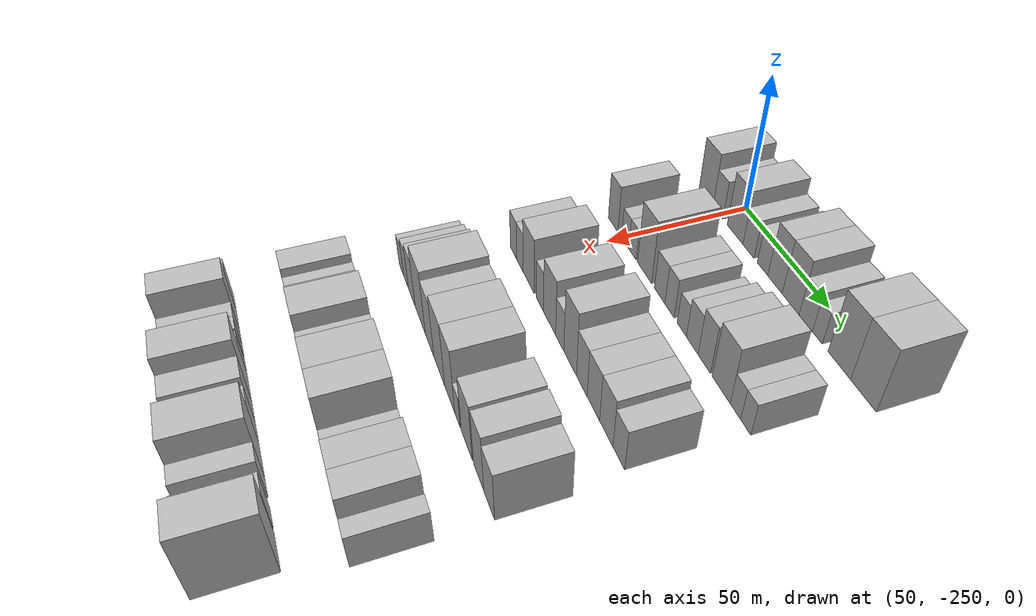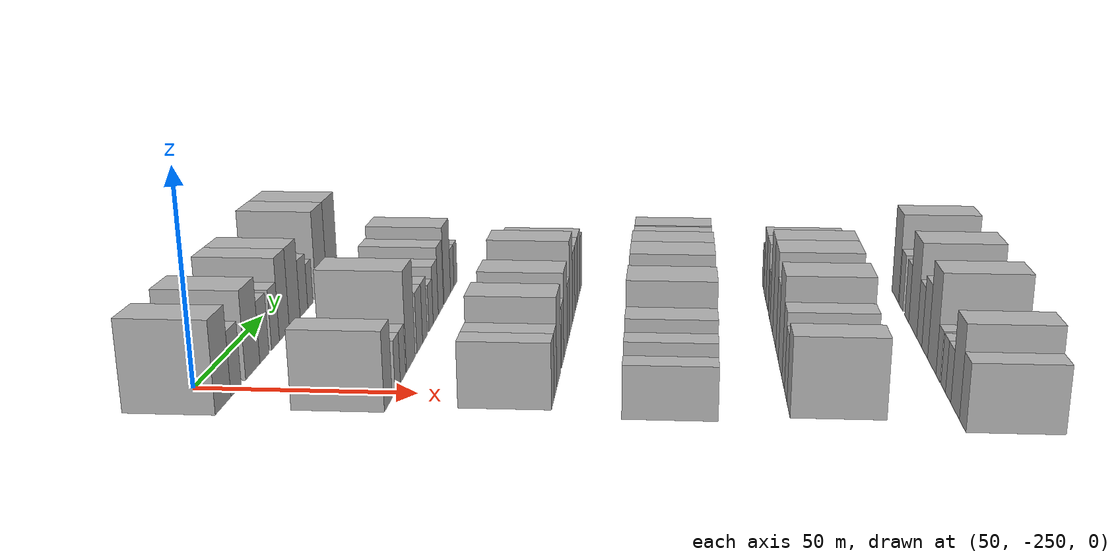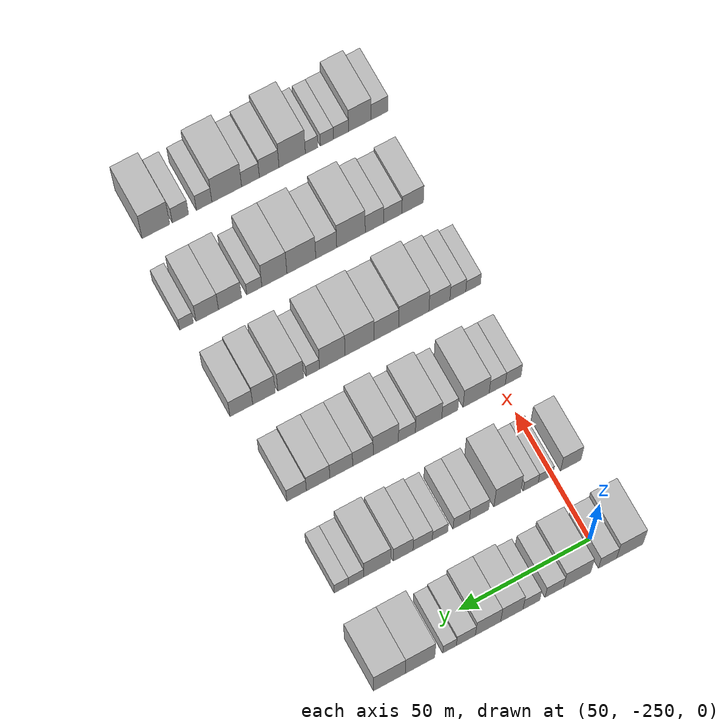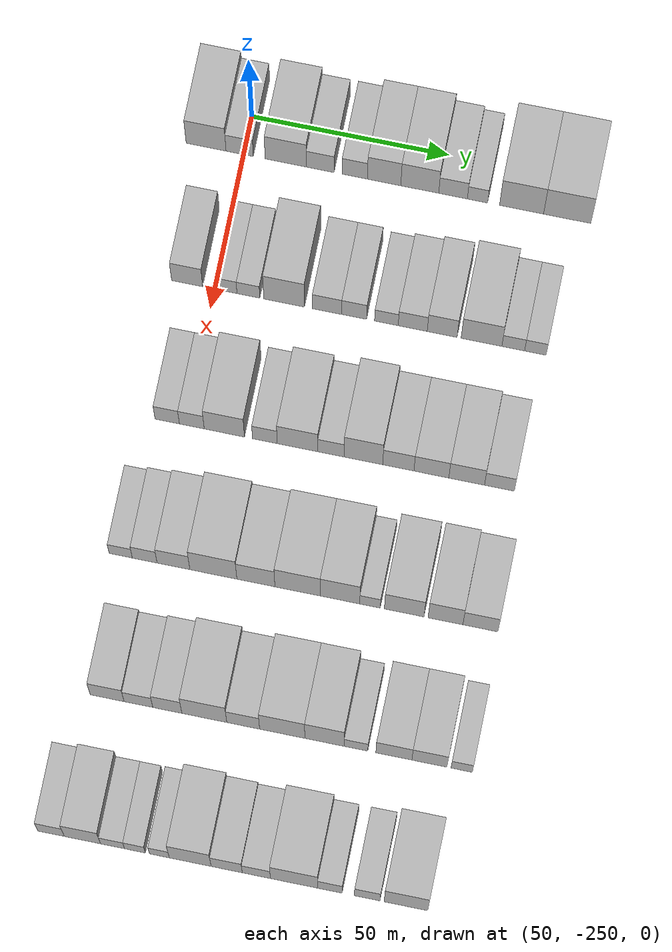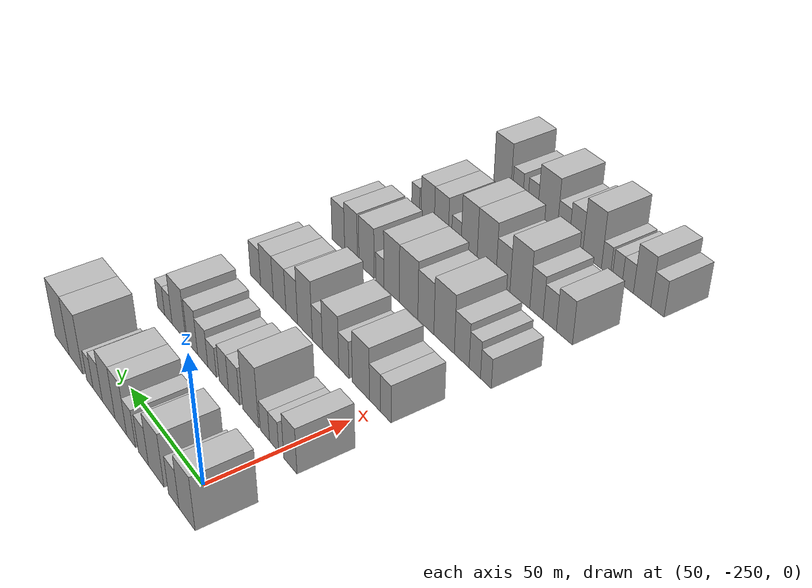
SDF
<sdf version="1.6">
 <world name="default">
  <model name="building_34">
   <static>1</static>
   <pose>50.0000 -259.5677 0 0.000000 0.000000 0.000000</pose>
   <link name="link">
    <pose>0 0 10.50 0 0 0</pose>
    <collision name="collision"><geometry><box><size>20.0000 10.0947 21.0000</size></box></geometry></collision>
    <visual name="visual">
     <cast_shadows>0</cast_shadows>
     <geometry><box><size>20.0000 10.0947 21.0000</size></box></geometry>
     <material>
      <script>
       <uri>model://HANNAS_wall/materials/scripts</uri>
       <uri>model://HANNAS_wall/materials/textures</uri>
       <name>vrc/HANNAS_wall</name>
      </script>
     </material>
    </visual>
   </link>
  </model>
  <model name="building_35">
   <static>1</static>
   <pose>50.0000 -251.0583 0 0.000000 0.000000 0.000000</pose>
   <link name="link">
    <pose>0 0 7.50 0 0 0</pose>
    <collision name="collision"><geometry><box><size>20.0000 6.9240 15.0000</size></box></geometry></collision>
    <visual name="visual">
     <cast_shadows>0</cast_shadows>
     <geometry><box><size>20.0000 6.9240 15.0000</size></box></geometry>
     <material>
      <script>
       <uri>model://HANNAS_wall/materials/scripts</uri>
       <uri>model://HANNAS_wall/materials/textures</uri>
       <name>vrc/HANNAS_wall</name>
      </script>
     </material>
    </visual>
   </link>
  </model>
  <model name="building_36">
   <static>1</static>
   <pose>50.0000 -239.3828 0 0.000000 0.000000 0.000000</pose>
   <link name="link">
    <pose>0 0 10.50 0 0 0</pose>
    <collision name="collision"><geometry><box><size>20.0000 10.4271 21.0000</size></box></geometry></collision>
    <visual name="visual">
     <cast_shadows>0</cast_shadows>
     <geometry><box><size>20.0000 10.4271 21.0000</size></box></geometry>
     <material>
      <script>
       <uri>model://HANNAS_wall/materials/scripts</uri>
       <uri>model://HANNAS_wall/materials/textures</uri>
       <name>vrc/HANNAS_wall</name>
      </script>
     </material>
    </visual>
   </link>
  </model>
  <model name="building_37">
   <static>1</static>
   <pose>50.0000 -230.6563 0 0.000000 0.000000 0.000000</pose>
   <link name="link">
    <pose>0 0 7.50 0 0 0</pose>
    <collision name="collision"><geometry><box><size>20.0000 7.0258 15.0000</size></box></geometry></collision>
    <visual name="visual">
     <cast_shadows>0</cast_shadows>
     <geometry><box><size>20.0000 7.0258 15.0000</size></box></geometry>
     <material>
      <script>
       <uri>model://HANNAS_wall/materials/scripts</uri>
       <uri>model://HANNAS_wall/materials/textures</uri>
       <name>vrc/HANNAS_wall</name>
      </script>
     </material>
    </visual>
   </link>
  </model>
  <model name="building_38">
   <static>1</static>
   <pose>50.0000 -221.9402 0 0.000000 0.000000 0.000000</pose>
   <link name="link">
    <pose>0 0 7.50 0 0 0</pose>
    <collision name="collision"><geometry><box><size>20.0000 6.4063 15.0000</size></box></geometry></collision>
    <visual name="visual">
     <cast_shadows>0</cast_shadows>
     <geometry><box><size>20.0000 6.4063 15.0000</size></box></geometry>
     <material>
      <script>
       <uri>model://HANNAS_wall/materials/scripts</uri>
       <uri>model://HANNAS_wall/materials/textures</uri>
       <name>vrc/HANNAS_wall</name>
      </script>
     </material>
    </visual>
   </link>
  </model>
  <model name="building_39">
   <static>1</static>
   <pose>50.0000 -214.5064 0 0.000000 0.000000 0.000000</pose>
   <link name="link">
    <pose>0 0 10.50 0 0 0</pose>
    <collision name="collision"><geometry><box><size>20.0000 8.4614 21.0000</size></box></geometry></collision>
    <visual name="visual">
     <cast_shadows>0</cast_shadows>
     <geometry><box><size>20.0000 8.4614 21.0000</size></box></geometry>
     <material>
      <script>
       <uri>model://HANNAS_wall/materials/scripts</uri>
       <uri>model://HANNAS_wall/materials/textures</uri>
       <name>vrc/HANNAS_wall</name>
      </script>
     </material>
    </visual>
   </link>
  </model>
  <model name="building_40">
   <static>1</static>
   <pose>50.0000 -205.4819 0 0.000000 0.000000 0.000000</pose>
   <link name="link">
    <pose>0 0 10.50 0 0 0</pose>
    <collision name="collision"><geometry><box><size>20.0000 9.5876 21.0000</size></box></geometry></collision>
    <visual name="visual">
     <cast_shadows>0</cast_shadows>
     <geometry><box><size>20.0000 9.5876 21.0000</size></box></geometry>
     <material>
      <script>
       <uri>model://HANNAS_wall/materials/scripts</uri>
       <uri>model://HANNAS_wall/materials/textures</uri>
       <name>vrc/HANNAS_wall</name>
      </script>
     </material>
    </visual>
   </link>
  </model>
  <model name="building_41">
   <static>1</static>
   <pose>50.0000 -197.0748 0 0.000000 0.000000 0.000000</pose>
   <link name="link">
    <pose>0 0 7.50 0 0 0</pose>
    <collision name="collision"><geometry><box><size>20.0000 7.2265 15.0000</size></box></geometry></collision>
    <visual name="visual">
     <cast_shadows>0</cast_shadows>
     <geometry><box><size>20.0000 7.2265 15.0000</size></box></geometry>
     <material>
      <script>
       <uri>model://HANNAS_wall/materials/scripts</uri>
       <uri>model://HANNAS_wall/materials/textures</uri>
       <name>vrc/HANNAS_wall</name>
      </script>
     </material>
    </visual>
   </link>
  </model>
  <model name="building_42">
   <static>1</static>
   <pose>50.0000 -190.9008 0 0.000000 0.000000 0.000000</pose>
   <link name="link">
    <pose>0 0 6.00 0 0 0</pose>
    <collision name="collision"><geometry><box><size>20.0000 5.1214 12.0000</size></box></geometry></collision>
    <visual name="visual">
     <cast_shadows>0</cast_shadows>
     <geometry><box><size>20.0000 5.1214 12.0000</size></box></geometry>
     <material>
      <script>
       <uri>model://HANNAS_wall/materials/scripts</uri>
       <uri>model://HANNAS_wall/materials/textures</uri>
       <name>vrc/HANNAS_wall</name>
      </script>
     </material>
    </visual>
   </link>
  </model>
  <model name="building_43">
   <static>1</static>
   <pose>50.0000 -179.7802 0 0.000000 0.000000 0.000000</pose>
   <link name="link">
    <pose>0 0 12.00 0 0 0</pose>
    <collision name="collision"><geometry><box><size>20.0000 11.1198 24.0000</size></box></geometry></collision>
    <visual name="visual">
     <cast_shadows>0</cast_shadows>
     <geometry><box><size>20.0000 11.1198 24.0000</size></box></geometry>
     <material>
      <script>
       <uri>model://HANNAS_wall/materials/scripts</uri>
       <uri>model://HANNAS_wall/materials/textures</uri>
       <name>vrc/HANNAS_wall</name>
      </script>
     </material>
    </visual>
   </link>
  </model>
  <model name="building_44">
   <static>1</static>
   <pose>50.0000 -168.2650 0 0.000000 0.000000 0.000000</pose>
   <link name="link">
    <pose>0 0 12.00 0 0 0</pose>
    <collision name="collision"><geometry><box><size>20.0000 11.9106 24.0000</size></box></geometry></collision>
    <visual name="visual">
     <cast_shadows>0</cast_shadows>
     <geometry><box><size>20.0000 11.9106 24.0000</size></box></geometry>
     <material>
      <script>
       <uri>model://HANNAS_wall/materials/scripts</uri>
       <uri>model://HANNAS_wall/materials/textures</uri>
       <name>vrc/HANNAS_wall</name>
      </script>
     </material>
    </visual>
   </link>
  </model>
  <model name="building_161">
   <static>1</static>
   <pose>85.0000 -257.0009 0 0.000000 0.000000 0.000000</pose>
   <link name="link">
    <pose>0 0 9.00 0 0 0</pose>
    <collision name="collision"><geometry><box><size>20.0000 7.8347 18.0000</size></box></geometry></collision>
    <visual name="visual">
     <cast_shadows>0</cast_shadows>
     <geometry><box><size>20.0000 7.8347 18.0000</size></box></geometry>
     <material>
      <script>
       <uri>model://HANNAS_wall/materials/scripts</uri>
       <uri>model://HANNAS_wall/materials/textures</uri>
       <name>vrc/HANNAS_wall</name>
      </script>
     </material>
    </visual>
   </link>
  </model>
  <model name="building_162">
   <static>1</static>
   <pose>85.0000 -247.2611 0 0.000000 0.000000 0.000000</pose>
   <link name="link">
    <pose>0 0 6.00 0 0 0</pose>
    <collision name="collision"><geometry><box><size>20.0000 5.6448 12.0000</size></box></geometry></collision>
    <visual name="visual">
     <cast_shadows>0</cast_shadows>
     <geometry><box><size>20.0000 5.6448 12.0000</size></box></geometry>
     <material>
      <script>
       <uri>model://HANNAS_wall/materials/scripts</uri>
       <uri>model://HANNAS_wall/materials/textures</uri>
       <name>vrc/HANNAS_wall</name>
      </script>
     </material>
    </visual>
   </link>
  </model>
  <model name="building_163">
   <static>1</static>
   <pose>85.0000 -241.5617 0 0.000000 0.000000 0.000000</pose>
   <link name="link">
    <pose>0 0 6.00 0 0 0</pose>
    <collision name="collision"><geometry><box><size>20.0000 5.7538 12.0000</size></box></geometry></collision>
    <visual name="visual">
     <cast_shadows>0</cast_shadows>
     <geometry><box><size>20.0000 5.7538 12.0000</size></box></geometry>
     <material>
      <script>
       <uri>model://HANNAS_wall/materials/scripts</uri>
       <uri>model://HANNAS_wall/materials/textures</uri>
       <name>vrc/HANNAS_wall</name>
      </script>
     </material>
    </visual>
   </link>
  </model>
  <model name="building_164">
   <static>1</static>
   <pose>85.0000 -232.5579 0 0.000000 0.000000 0.000000</pose>
   <link name="link">
    <pose>0 0 12.00 0 0 0</pose>
    <collision name="collision"><geometry><box><size>20.0000 10.2539 24.0000</size></box></geometry></collision>
    <visual name="visual">
     <cast_shadows>0</cast_shadows>
     <geometry><box><size>20.0000 10.2539 24.0000</size></box></geometry>
     <material>
      <script>
       <uri>model://HANNAS_wall/materials/scripts</uri>
       <uri>model://HANNAS_wall/materials/textures</uri>
       <name>vrc/HANNAS_wall</name>
      </script>
     </material>
    </visual>
   </link>
  </model>
  <model name="building_165">
   <static>1</static>
   <pose>85.0000 -221.7699 0 0.000000 0.000000 0.000000</pose>
   <link name="link">
    <pose>0 0 7.50 0 0 0</pose>
    <collision name="collision"><geometry><box><size>20.0000 7.3219 15.0000</size></box></geometry></collision>
    <visual name="visual">
     <cast_shadows>0</cast_shadows>
     <geometry><box><size>20.0000 7.3219 15.0000</size></box></geometry>
     <material>
      <script>
       <uri>model://HANNAS_wall/materials/scripts</uri>
       <uri>model://HANNAS_wall/materials/textures</uri>
       <name>vrc/HANNAS_wall</name>
      </script>
     </material>
    </visual>
   </link>
  </model>
  <model name="building_166">
   <static>1</static>
   <pose>85.0000 -214.9629 0 0.000000 0.000000 0.000000</pose>
   <link name="link">
    <pose>0 0 7.50 0 0 0</pose>
    <collision name="collision"><geometry><box><size>20.0000 6.2923 15.0000</size></box></geometry></collision>
    <visual name="visual">
     <cast_shadows>0</cast_shadows>
     <geometry><box><size>20.0000 6.2923 15.0000</size></box></geometry>
     <material>
      <script>
       <uri>model://HANNAS_wall/materials/scripts</uri>
       <uri>model://HANNAS_wall/materials/textures</uri>
       <name>vrc/HANNAS_wall</name>
      </script>
     </material>
    </visual>
   </link>
  </model>
  <model name="building_167">
   <static>1</static>
   <pose>85.0000 -206.8434 0 0.000000 0.000000 0.000000</pose>
   <link name="link">
    <pose>0 0 6.00 0 0 0</pose>
    <collision name="collision"><geometry><box><size>20.0000 5.9466 12.0000</size></box></geometry></collision>
    <visual name="visual">
     <cast_shadows>0</cast_shadows>
     <geometry><box><size>20.0000 5.9466 12.0000</size></box></geometry>
     <material>
      <script>
       <uri>model://HANNAS_wall/materials/scripts</uri>
       <uri>model://HANNAS_wall/materials/textures</uri>
       <name>vrc/HANNAS_wall</name>
      </script>
     </material>
    </visual>
   </link>
  </model>
  <model name="building_168">
   <static>1</static>
   <pose>85.0000 -200.2263 0 0.000000 0.000000 0.000000</pose>
   <link name="link">
    <pose>0 0 7.50 0 0 0</pose>
    <collision name="collision"><geometry><box><size>20.0000 7.2877 15.0000</size></box></geometry></collision>
    <visual name="visual">
     <cast_shadows>0</cast_shadows>
     <geometry><box><size>20.0000 7.2877 15.0000</size></box></geometry>
     <material>
      <script>
       <uri>model://HANNAS_wall/materials/scripts</uri>
       <uri>model://HANNAS_wall/materials/textures</uri>
       <name>vrc/HANNAS_wall</name>
      </script>
     </material>
    </visual>
   </link>
  </model>
  <model name="building_169">
   <static>1</static>
   <pose>85.0000 -192.8280 0 0.000000 0.000000 0.000000</pose>
   <link name="link">
    <pose>0 0 9.00 0 0 0</pose>
    <collision name="collision"><geometry><box><size>20.0000 7.5088 18.0000</size></box></geometry></collision>
    <visual name="visual">
     <cast_shadows>0</cast_shadows>
     <geometry><box><size>20.0000 7.5088 18.0000</size></box></geometry>
     <material>
      <script>
       <uri>model://HANNAS_wall/materials/scripts</uri>
       <uri>model://HANNAS_wall/materials/textures</uri>
       <name>vrc/HANNAS_wall</name>
      </script>
     </material>
    </visual>
   </link>
  </model>
  <model name="building_170">
   <static>1</static>
   <pose>85.0000 -182.9619 0 0.000000 0.000000 0.000000</pose>
   <link name="link">
    <pose>0 0 10.50 0 0 0</pose>
    <collision name="collision"><geometry><box><size>20.0000 10.2234 21.0000</size></box></geometry></collision>
    <visual name="visual">
     <cast_shadows>0</cast_shadows>
     <geometry><box><size>20.0000 10.2234 21.0000</size></box></geometry>
     <material>
      <script>
       <uri>model://HANNAS_wall/materials/scripts</uri>
       <uri>model://HANNAS_wall/materials/textures</uri>
       <name>vrc/HANNAS_wall</name>
      </script>
     </material>
    </visual>
   </link>
  </model>
  <model name="building_171">
   <static>1</static>
   <pose>85.0000 -174.9921 0 0.000000 0.000000 0.000000</pose>
   <link name="link">
    <pose>0 0 6.00 0 0 0</pose>
    <collision name="collision"><geometry><box><size>20.0000 5.7162 12.0000</size></box></geometry></collision>
    <visual name="visual">
     <cast_shadows>0</cast_shadows>
     <geometry><box><size>20.0000 5.7162 12.0000</size></box></geometry>
     <material>
      <script>
       <uri>model://HANNAS_wall/materials/scripts</uri>
       <uri>model://HANNAS_wall/materials/textures</uri>
       <name>vrc/HANNAS_wall</name>
      </script>
     </material>
    </visual>
   </link>
  </model>
  <model name="building_172">
   <static>1</static>
   <pose>85.0000 -169.4421 0 0.000000 0.000000 0.000000</pose>
   <link name="link">
    <pose>0 0 6.00 0 0 0</pose>
    <collision name="collision"><geometry><box><size>20.0000 5.3838 12.0000</size></box></geometry></collision>
    <visual name="visual">
     <cast_shadows>0</cast_shadows>
     <geometry><box><size>20.0000 5.3838 12.0000</size></box></geometry>
     <material>
      <script>
       <uri>model://HANNAS_wall/materials/scripts</uri>
       <uri>model://HANNAS_wall/materials/textures</uri>
       <name>vrc/HANNAS_wall</name>
      </script>
     </material>
    </visual>
   </link>
  </model>
  <model name="building_290">
   <static>1</static>
   <pose>120.0000 -254.6219 0 0.000000 0.000000 0.000000</pose>
   <link name="link">
    <pose>0 0 7.50 0 0 0</pose>
    <collision name="collision"><geometry><box><size>20.0000 6.0919 15.0000</size></box></geometry></collision>
    <visual name="visual">
     <cast_shadows>0</cast_shadows>
     <geometry><box><size>20.0000 6.0919 15.0000</size></box></geometry>
     <material>
      <script>
       <uri>model://HANNAS_wall/materials/scripts</uri>
       <uri>model://HANNAS_wall/materials/textures</uri>
       <name>vrc/HANNAS_wall</name>
      </script>
     </material>
    </visual>
   </link>
  </model>
  <model name="building_291">
   <static>1</static>
   <pose>120.0000 -248.4598 0 0.000000 0.000000 0.000000</pose>
   <link name="link">
    <pose>0 0 7.50 0 0 0</pose>
    <collision name="collision"><geometry><box><size>20.0000 6.2323 15.0000</size></box></geometry></collision>
    <visual name="visual">
     <cast_shadows>0</cast_shadows>
     <geometry><box><size>20.0000 6.2323 15.0000</size></box></geometry>
     <material>
      <script>
       <uri>model://HANNAS_wall/materials/scripts</uri>
       <uri>model://HANNAS_wall/materials/textures</uri>
       <name>vrc/HANNAS_wall</name>
      </script>
     </material>
    </visual>
   </link>
  </model>
  <model name="building_292">
   <static>1</static>
   <pose>120.0000 -240.3001 0 0.000000 0.000000 0.000000</pose>
   <link name="link">
    <pose>0 0 10.50 0 0 0</pose>
    <collision name="collision"><geometry><box><size>20.0000 10.0871 21.0000</size></box></geometry></collision>
    <visual name="visual">
     <cast_shadows>0</cast_shadows>
     <geometry><box><size>20.0000 10.0871 21.0000</size></box></geometry>
     <material>
      <script>
       <uri>model://HANNAS_wall/materials/scripts</uri>
       <uri>model://HANNAS_wall/materials/textures</uri>
       <name>vrc/HANNAS_wall</name>
      </script>
     </material>
    </visual>
   </link>
  </model>
  <model name="building_293">
   <static>1</static>
   <pose>120.0000 -230.1544 0 0.000000 0.000000 0.000000</pose>
   <link name="link">
    <pose>0 0 7.50 0 0 0</pose>
    <collision name="collision"><geometry><box><size>20.0000 6.2041 15.0000</size></box></geometry></collision>
    <visual name="visual">
     <cast_shadows>0</cast_shadows>
     <geometry><box><size>20.0000 6.2041 15.0000</size></box></geometry>
     <material>
      <script>
       <uri>model://HANNAS_wall/materials/scripts</uri>
       <uri>model://HANNAS_wall/materials/textures</uri>
       <name>vrc/HANNAS_wall</name>
      </script>
     </material>
    </visual>
   </link>
  </model>
  <model name="building_294">
   <static>1</static>
   <pose>120.0000 -221.9736 0 0.000000 0.000000 0.000000</pose>
   <link name="link">
    <pose>0 0 10.50 0 0 0</pose>
    <collision name="collision"><geometry><box><size>20.0000 10.1576 21.0000</size></box></geometry></collision>
    <visual name="visual">
     <cast_shadows>0</cast_shadows>
     <geometry><box><size>20.0000 10.1576 21.0000</size></box></geometry>
     <material>
      <script>
       <uri>model://HANNAS_wall/materials/scripts</uri>
       <uri>model://HANNAS_wall/materials/textures</uri>
       <name>vrc/HANNAS_wall</name>
      </script>
     </material>
    </visual>
   </link>
  </model>
  <model name="building_295">
   <static>1</static>
   <pose>120.0000 -213.6304 0 0.000000 0.000000 0.000000</pose>
   <link name="link">
    <pose>0 0 7.50 0 0 0</pose>
    <collision name="collision"><geometry><box><size>20.0000 6.5287 15.0000</size></box></geometry></collision>
    <visual name="visual">
     <cast_shadows>0</cast_shadows>
     <geometry><box><size>20.0000 6.5287 15.0000</size></box></geometry>
     <material>
      <script>
       <uri>model://HANNAS_wall/materials/scripts</uri>
       <uri>model://HANNAS_wall/materials/textures</uri>
       <name>vrc/HANNAS_wall</name>
      </script>
     </material>
    </visual>
   </link>
  </model>
  <model name="building_296">
   <static>1</static>
   <pose>120.0000 -205.5325 0 0.000000 0.000000 0.000000</pose>
   <link name="link">
    <pose>0 0 12.00 0 0 0</pose>
    <collision name="collision"><geometry><box><size>20.0000 9.6672 24.0000</size></box></geometry></collision>
    <visual name="visual">
     <cast_shadows>0</cast_shadows>
     <geometry><box><size>20.0000 9.6672 24.0000</size></box></geometry>
     <material>
      <script>
       <uri>model://HANNAS_wall/materials/scripts</uri>
       <uri>model://HANNAS_wall/materials/textures</uri>
       <name>vrc/HANNAS_wall</name>
      </script>
     </material>
    </visual>
   </link>
  </model>
  <model name="building_297">
   <static>1</static>
   <pose>120.0000 -196.7879 0 0.000000 0.000000 0.000000</pose>
   <link name="link">
    <pose>0 0 9.00 0 0 0</pose>
    <collision name="collision"><geometry><box><size>20.0000 7.8219 18.0000</size></box></geometry></collision>
    <visual name="visual">
     <cast_shadows>0</cast_shadows>
     <geometry><box><size>20.0000 7.8219 18.0000</size></box></geometry>
     <material>
      <script>
       <uri>model://HANNAS_wall/materials/scripts</uri>
       <uri>model://HANNAS_wall/materials/textures</uri>
       <name>vrc/HANNAS_wall</name>
      </script>
     </material>
    </visual>
   </link>
  </model>
  <model name="building_298">
   <static>1</static>
   <pose>120.0000 -188.5286 0 0.000000 0.000000 0.000000</pose>
   <link name="link">
    <pose>0 0 9.00 0 0 0</pose>
    <collision name="collision"><geometry><box><size>20.0000 8.6967 18.0000</size></box></geometry></collision>
    <visual name="visual">
     <cast_shadows>0</cast_shadows>
     <geometry><box><size>20.0000 8.6967 18.0000</size></box></geometry>
     <material>
      <script>
       <uri>model://HANNAS_wall/materials/scripts</uri>
       <uri>model://HANNAS_wall/materials/textures</uri>
       <name>vrc/HANNAS_wall</name>
      </script>
     </material>
    </visual>
   </link>
  </model>
  <model name="building_299">
   <static>1</static>
   <pose>120.0000 -179.7274 0 0.000000 0.000000 0.000000</pose>
   <link name="link">
    <pose>0 0 9.00 0 0 0</pose>
    <collision name="collision"><geometry><box><size>20.0000 8.9057 18.0000</size></box></geometry></collision>
    <visual name="visual">
     <cast_shadows>0</cast_shadows>
     <geometry><box><size>20.0000 8.9057 18.0000</size></box></geometry>
     <material>
      <script>
       <uri>model://HANNAS_wall/materials/scripts</uri>
       <uri>model://HANNAS_wall/materials/textures</uri>
       <name>vrc/HANNAS_wall</name>
      </script>
     </material>
    </visual>
   </link>
  </model>
  <model name="building_300">
   <static>1</static>
   <pose>120.0000 -171.5593 0 0.000000 0.000000 0.000000</pose>
   <link name="link">
    <pose>0 0 7.50 0 0 0</pose>
    <collision name="collision"><geometry><box><size>20.0000 7.4305 15.0000</size></box></geometry></collision>
    <visual name="visual">
     <cast_shadows>0</cast_shadows>
     <geometry><box><size>20.0000 7.4305 15.0000</size></box></geometry>
     <material>
      <script>
       <uri>model://HANNAS_wall/materials/scripts</uri>
       <uri>model://HANNAS_wall/materials/textures</uri>
       <name>vrc/HANNAS_wall</name>
      </script>
     </material>
    </visual>
   </link>
  </model>
  <model name="building_429">
   <static>1</static>
   <pose>155.0000 -258.8004 0 0.000000 0.000000 0.000000</pose>
   <link name="link">
    <pose>0 0 6.00 0 0 0</pose>
    <collision name="collision"><geometry><box><size>20.0000 5.7583 12.0000</size></box></geometry></collision>
    <visual name="visual">
     <cast_shadows>0</cast_shadows>
     <geometry><box><size>20.0000 5.7583 12.0000</size></box></geometry>
     <material>
      <script>
       <uri>model://HANNAS_wall/materials/scripts</uri>
       <uri>model://HANNAS_wall/materials/textures</uri>
       <name>vrc/HANNAS_wall</name>
      </script>
     </material>
    </visual>
   </link>
  </model>
  <model name="building_430">
   <static>1</static>
   <pose>155.0000 -252.8357 0 0.000000 0.000000 0.000000</pose>
   <link name="link">
    <pose>0 0 7.50 0 0 0</pose>
    <collision name="collision"><geometry><box><size>20.0000 6.1710 15.0000</size></box></geometry></collision>
    <visual name="visual">
     <cast_shadows>0</cast_shadows>
     <geometry><box><size>20.0000 6.1710 15.0000</size></box></geometry>
     <material>
      <script>
       <uri>model://HANNAS_wall/materials/scripts</uri>
       <uri>model://HANNAS_wall/materials/textures</uri>
       <name>vrc/HANNAS_wall</name>
      </script>
     </material>
    </visual>
   </link>
  </model>
  <model name="building_431">
   <static>1</static>
   <pose>155.0000 -245.6579 0 0.000000 0.000000 0.000000</pose>
   <link name="link">
    <pose>0 0 9.00 0 0 0</pose>
    <collision name="collision"><geometry><box><size>20.0000 8.1846 18.0000</size></box></geometry></collision>
    <visual name="visual">
     <cast_shadows>0</cast_shadows>
     <geometry><box><size>20.0000 8.1846 18.0000</size></box></geometry>
     <material>
      <script>
       <uri>model://HANNAS_wall/materials/scripts</uri>
       <uri>model://HANNAS_wall/materials/textures</uri>
       <name>vrc/HANNAS_wall</name>
      </script>
     </material>
    </visual>
   </link>
  </model>
  <model name="building_432">
   <static>1</static>
   <pose>155.0000 -235.7179 0 0.000000 0.000000 0.000000</pose>
   <link name="link">
    <pose>0 0 12.00 0 0 0</pose>
    <collision name="collision"><geometry><box><size>20.0000 11.6955 24.0000</size></box></geometry></collision>
    <visual name="visual">
     <cast_shadows>0</cast_shadows>
     <geometry><box><size>20.0000 11.6955 24.0000</size></box></geometry>
     <material>
      <script>
       <uri>model://HANNAS_wall/materials/scripts</uri>
       <uri>model://HANNAS_wall/materials/textures</uri>
       <name>vrc/HANNAS_wall</name>
      </script>
     </material>
    </visual>
   </link>
  </model>
  <model name="building_433">
   <static>1</static>
   <pose>155.0000 -225.1329 0 0.000000 0.000000 0.000000</pose>
   <link name="link">
    <pose>0 0 10.50 0 0 0</pose>
    <collision name="collision"><geometry><box><size>20.0000 9.4745 21.0000</size></box></geometry></collision>
    <visual name="visual">
     <cast_shadows>0</cast_shadows>
     <geometry><box><size>20.0000 9.4745 21.0000</size></box></geometry>
     <material>
      <script>
       <uri>model://HANNAS_wall/materials/scripts</uri>
       <uri>model://HANNAS_wall/materials/textures</uri>
       <name>vrc/HANNAS_wall</name>
      </script>
     </material>
    </visual>
   </link>
  </model>
  <model name="building_434">
   <static>1</static>
   <pose>155.0000 -214.7763 0 0.000000 0.000000 0.000000</pose>
   <link name="link">
    <pose>0 0 12.00 0 0 0</pose>
    <collision name="collision"><geometry><box><size>20.0000 11.2388 24.0000</size></box></geometry></collision>
    <visual name="visual">
     <cast_shadows>0</cast_shadows>
     <geometry><box><size>20.0000 11.2388 24.0000</size></box></geometry>
     <material>
      <script>
       <uri>model://HANNAS_wall/materials/scripts</uri>
       <uri>model://HANNAS_wall/materials/textures</uri>
       <name>vrc/HANNAS_wall</name>
      </script>
     </material>
    </visual>
   </link>
  </model>
  <model name="building_435">
   <static>1</static>
   <pose>155.0000 -204.2488 0 0.000000 0.000000 0.000000</pose>
   <link name="link">
    <pose>0 0 12.00 0 0 0</pose>
    <collision name="collision"><geometry><box><size>20.0000 9.8162 24.0000</size></box></geometry></collision>
    <visual name="visual">
     <cast_shadows>0</cast_shadows>
     <geometry><box><size>20.0000 9.8162 24.0000</size></box></geometry>
     <material>
      <script>
       <uri>model://HANNAS_wall/materials/scripts</uri>
       <uri>model://HANNAS_wall/materials/textures</uri>
       <name>vrc/HANNAS_wall</name>
      </script>
     </material>
    </visual>
   </link>
  </model>
  <model name="building_436">
   <static>1</static>
   <pose>155.0000 -196.7726 0 0.000000 0.000000 0.000000</pose>
   <link name="link">
    <pose>0 0 6.00 0 0 0</pose>
    <collision name="collision"><geometry><box><size>20.0000 5.1362 12.0000</size></box></geometry></collision>
    <visual name="visual">
     <cast_shadows>0</cast_shadows>
     <geometry><box><size>20.0000 5.1362 12.0000</size></box></geometry>
     <material>
      <script>
       <uri>model://HANNAS_wall/materials/scripts</uri>
       <uri>model://HANNAS_wall/materials/textures</uri>
       <name>vrc/HANNAS_wall</name>
      </script>
     </material>
    </visual>
   </link>
  </model>
  <model name="building_437">
   <static>1</static>
   <pose>155.0000 -188.2771 0 0.000000 0.000000 0.000000</pose>
   <link name="link">
    <pose>0 0 10.50 0 0 0</pose>
    <collision name="collision"><geometry><box><size>20.0000 9.8549 21.0000</size></box></geometry></collision>
    <visual name="visual">
     <cast_shadows>0</cast_shadows>
     <geometry><box><size>20.0000 9.8549 21.0000</size></box></geometry>
     <material>
      <script>
       <uri>model://HANNAS_wall/materials/scripts</uri>
       <uri>model://HANNAS_wall/materials/textures</uri>
       <name>vrc/HANNAS_wall</name>
      </script>
     </material>
    </visual>
   </link>
  </model>
  <model name="building_438">
   <static>1</static>
   <pose>155.0000 -178.0270 0 0.000000 0.000000 0.000000</pose>
   <link name="link">
    <pose>0 0 10.50 0 0 0</pose>
    <collision name="collision"><geometry><box><size>20.0000 8.6452 21.0000</size></box></geometry></collision>
    <visual name="visual">
     <cast_shadows>0</cast_shadows>
     <geometry><box><size>20.0000 8.6452 21.0000</size></box></geometry>
     <material>
      <script>
       <uri>model://HANNAS_wall/materials/scripts</uri>
       <uri>model://HANNAS_wall/materials/textures</uri>
       <name>vrc/HANNAS_wall</name>
      </script>
     </material>
    </visual>
   </link>
  </model>
  <model name="building_439">
   <static>1</static>
   <pose>155.0000 -169.3677 0 0.000000 0.000000 0.000000</pose>
   <link name="link">
    <pose>0 0 9.00 0 0 0</pose>
    <collision name="collision"><geometry><box><size>20.0000 8.6733 18.0000</size></box></geometry></collision>
    <visual name="visual">
     <cast_shadows>0</cast_shadows>
     <geometry><box><size>20.0000 8.6733 18.0000</size></box></geometry>
     <material>
      <script>
       <uri>model://HANNAS_wall/materials/scripts</uri>
       <uri>model://HANNAS_wall/materials/textures</uri>
       <name>vrc/HANNAS_wall</name>
      </script>
     </material>
    </visual>
   </link>
  </model>
  <model name="building_547">
   <static>1</static>
   <pose>190.0000 -254.6984 0 0.000000 0.000000 0.000000</pose>
   <link name="link">
    <pose>0 0 9.00 0 0 0</pose>
    <collision name="collision"><geometry><box><size>20.0000 8.4102 18.0000</size></box></geometry></collision>
    <visual name="visual">
     <cast_shadows>0</cast_shadows>
     <geometry><box><size>20.0000 8.4102 18.0000</size></box></geometry>
     <material>
      <script>
       <uri>model://HANNAS_wall/materials/scripts</uri>
       <uri>model://HANNAS_wall/materials/textures</uri>
       <name>vrc/HANNAS_wall</name>
      </script>
     </material>
    </visual>
   </link>
  </model>
  <model name="building_548">
   <static>1</static>
   <pose>190.0000 -246.9472 0 0.000000 0.000000 0.000000</pose>
   <link name="link">
    <pose>0 0 7.50 0 0 0</pose>
    <collision name="collision"><geometry><box><size>20.0000 7.0922 15.0000</size></box></geometry></collision>
    <visual name="visual">
     <cast_shadows>0</cast_shadows>
     <geometry><box><size>20.0000 7.0922 15.0000</size></box></geometry>
     <material>
      <script>
       <uri>model://HANNAS_wall/materials/scripts</uri>
       <uri>model://HANNAS_wall/materials/textures</uri>
       <name>vrc/HANNAS_wall</name>
      </script>
     </material>
    </visual>
   </link>
  </model>
  <model name="building_549">
   <static>1</static>
   <pose>190.0000 -239.7890 0 0.000000 0.000000 0.000000</pose>
   <link name="link">
    <pose>0 0 9.00 0 0 0</pose>
    <collision name="collision"><geometry><box><size>20.0000 7.2243 18.0000</size></box></geometry></collision>
    <visual name="visual">
     <cast_shadows>0</cast_shadows>
     <geometry><box><size>20.0000 7.2243 18.0000</size></box></geometry>
     <material>
      <script>
       <uri>model://HANNAS_wall/materials/scripts</uri>
       <uri>model://HANNAS_wall/materials/textures</uri>
       <name>vrc/HANNAS_wall</name>
      </script>
     </material>
    </visual>
   </link>
  </model>
  <model name="building_550">
   <static>1</static>
   <pose>190.0000 -230.6210 0 0.000000 0.000000 0.000000</pose>
   <link name="link">
    <pose>0 0 12.00 0 0 0</pose>
    <collision name="collision"><geometry><box><size>20.0000 11.1116 24.0000</size></box></geometry></collision>
    <visual name="visual">
     <cast_shadows>0</cast_shadows>
     <geometry><box><size>20.0000 11.1116 24.0000</size></box></geometry>
     <material>
      <script>
       <uri>model://HANNAS_wall/materials/scripts</uri>
       <uri>model://HANNAS_wall/materials/textures</uri>
       <name>vrc/HANNAS_wall</name>
      </script>
     </material>
    </visual>
   </link>
  </model>
  <model name="building_551">
   <static>1</static>
   <pose>190.0000 -221.0077 0 0.000000 0.000000 0.000000</pose>
   <link name="link">
    <pose>0 0 9.00 0 0 0</pose>
    <collision name="collision"><geometry><box><size>20.0000 8.1152 18.0000</size></box></geometry></collision>
    <visual name="visual">
     <cast_shadows>0</cast_shadows>
     <geometry><box><size>20.0000 8.1152 18.0000</size></box></geometry>
     <material>
      <script>
       <uri>model://HANNAS_wall/materials/scripts</uri>
       <uri>model://HANNAS_wall/materials/textures</uri>
       <name>vrc/HANNAS_wall</name>
      </script>
     </material>
    </visual>
   </link>
  </model>
  <model name="building_552">
   <static>1</static>
   <pose>190.0000 -211.3554 0 0.000000 0.000000 0.000000</pose>
   <link name="link">
    <pose>0 0 12.00 0 0 0</pose>
    <collision name="collision"><geometry><box><size>20.0000 11.1895 24.0000</size></box></geometry></collision>
    <visual name="visual">
     <cast_shadows>0</cast_shadows>
     <geometry><box><size>20.0000 11.1895 24.0000</size></box></geometry>
     <material>
      <script>
       <uri>model://HANNAS_wall/materials/scripts</uri>
       <uri>model://HANNAS_wall/materials/textures</uri>
       <name>vrc/HANNAS_wall</name>
      </script>
     </material>
    </visual>
   </link>
  </model>
  <model name="building_553">
   <static>1</static>
   <pose>190.0000 -200.9160 0 0.000000 0.000000 0.000000</pose>
   <link name="link">
    <pose>0 0 12.00 0 0 0</pose>
    <collision name="collision"><geometry><box><size>20.0000 9.6893 24.0000</size></box></geometry></collision>
    <visual name="visual">
     <cast_shadows>0</cast_shadows>
     <geometry><box><size>20.0000 9.6893 24.0000</size></box></geometry>
     <material>
      <script>
       <uri>model://HANNAS_wall/materials/scripts</uri>
       <uri>model://HANNAS_wall/materials/textures</uri>
       <name>vrc/HANNAS_wall</name>
      </script>
     </material>
    </visual>
   </link>
  </model>
  <model name="building_554">
   <static>1</static>
   <pose>190.0000 -193.1472 0 0.000000 0.000000 0.000000</pose>
   <link name="link">
    <pose>0 0 6.00 0 0 0</pose>
    <collision name="collision"><geometry><box><size>20.0000 5.8482 12.0000</size></box></geometry></collision>
    <visual name="visual">
     <cast_shadows>0</cast_shadows>
     <geometry><box><size>20.0000 5.8482 12.0000</size></box></geometry>
     <material>
      <script>
       <uri>model://HANNAS_wall/materials/scripts</uri>
       <uri>model://HANNAS_wall/materials/textures</uri>
       <name>vrc/HANNAS_wall</name>
      </script>
     </material>
    </visual>
   </link>
  </model>
  <model name="building_555">
   <static>1</static>
   <pose>190.0000 -183.7744 0 0.000000 0.000000 0.000000</pose>
   <link name="link">
    <pose>0 0 9.00 0 0 0</pose>
    <collision name="collision"><geometry><box><size>20.0000 8.8974 18.0000</size></box></geometry></collision>
    <visual name="visual">
     <cast_shadows>0</cast_shadows>
     <geometry><box><size>20.0000 8.8974 18.0000</size></box></geometry>
     <material>
      <script>
       <uri>model://HANNAS_wall/materials/scripts</uri>
       <uri>model://HANNAS_wall/materials/textures</uri>
       <name>vrc/HANNAS_wall</name>
      </script>
     </material>
    </visual>
   </link>
  </model>
  <model name="building_556">
   <static>1</static>
   <pose>190.0000 -175.0038 0 0.000000 0.000000 0.000000</pose>
   <link name="link">
    <pose>0 0 9.00 0 0 0</pose>
    <collision name="collision"><geometry><box><size>20.0000 8.6438 18.0000</size></box></geometry></collision>
    <visual name="visual">
     <cast_shadows>0</cast_shadows>
     <geometry><box><size>20.0000 8.6438 18.0000</size></box></geometry>
     <material>
      <script>
       <uri>model://HANNAS_wall/materials/scripts</uri>
       <uri>model://HANNAS_wall/materials/textures</uri>
       <name>vrc/HANNAS_wall</name>
      </script>
     </material>
    </visual>
   </link>
  </model>
  <model name="building_557">
   <static>1</static>
   <pose>190.0000 -167.0544 0 0.000000 0.000000 0.000000</pose>
   <link name="link">
    <pose>0 0 6.00 0 0 0</pose>
    <collision name="collision"><geometry><box><size>20.0000 5.2550 12.0000</size></box></geometry></collision>
    <visual name="visual">
     <cast_shadows>0</cast_shadows>
     <geometry><box><size>20.0000 5.2550 12.0000</size></box></geometry>
     <material>
      <script>
       <uri>model://HANNAS_wall/materials/scripts</uri>
       <uri>model://HANNAS_wall/materials/textures</uri>
       <name>vrc/HANNAS_wall</name>
      </script>
     </material>
    </visual>
   </link>
  </model>
  <model name="building_666">
   <static>1</static>
   <pose>225.0000 -261.0546 0 0.000000 0.000000 0.000000</pose>
   <link name="link">
    <pose>0 0 7.50 0 0 0</pose>
    <collision name="collision"><geometry><box><size>20.0000 6.5686 15.0000</size></box></geometry></collision>
    <visual name="visual">
     <cast_shadows>0</cast_shadows>
     <geometry><box><size>20.0000 6.5686 15.0000</size></box></geometry>
     <material>
      <script>
       <uri>model://HANNAS_wall/materials/scripts</uri>
       <uri>model://HANNAS_wall/materials/textures</uri>
       <name>vrc/HANNAS_wall</name>
      </script>
     </material>
    </visual>
   </link>
  </model>
  <model name="building_667">
   <static>1</static>
   <pose>225.0000 -253.3016 0 0.000000 0.000000 0.000000</pose>
   <link name="link">
    <pose>0 0 10.50 0 0 0</pose>
    <collision name="collision"><geometry><box><size>20.0000 8.9374 21.0000</size></box></geometry></collision>
    <visual name="visual">
     <cast_shadows>0</cast_shadows>
     <geometry><box><size>20.0000 8.9374 21.0000</size></box></geometry>
     <material>
      <script>
       <uri>model://HANNAS_wall/materials/scripts</uri>
       <uri>model://HANNAS_wall/materials/textures</uri>
       <name>vrc/HANNAS_wall</name>
      </script>
     </material>
    </visual>
   </link>
  </model>
  <model name="building_668">
   <static>1</static>
   <pose>225.0000 -245.8824 0 0.000000 0.000000 0.000000</pose>
   <link name="link">
    <pose>0 0 6.00 0 0 0</pose>
    <collision name="collision"><geometry><box><size>20.0000 5.9008 12.0000</size></box></geometry></collision>
    <visual name="visual">
     <cast_shadows>0</cast_shadows>
     <geometry><box><size>20.0000 5.9008 12.0000</size></box></geometry>
     <material>
      <script>
       <uri>model://HANNAS_wall/materials/scripts</uri>
       <uri>model://HANNAS_wall/materials/textures</uri>
       <name>vrc/HANNAS_wall</name>
      </script>
     </material>
    </visual>
   </link>
  </model>
  <model name="building_669">
   <static>1</static>
   <pose>225.0000 -240.3620 0 0.000000 0.000000 0.000000</pose>
   <link name="link">
    <pose>0 0 6.00 0 0 0</pose>
    <collision name="collision"><geometry><box><size>20.0000 5.1402 12.0000</size></box></geometry></collision>
    <visual name="visual">
     <cast_shadows>0</cast_shadows>
     <geometry><box><size>20.0000 5.1402 12.0000</size></box></geometry>
     <material>
      <script>
       <uri>model://HANNAS_wall/materials/scripts</uri>
       <uri>model://HANNAS_wall/materials/textures</uri>
       <name>vrc/HANNAS_wall</name>
      </script>
     </material>
    </visual>
   </link>
  </model>
  <model name="building_670">
   <static>1</static>
   <pose>225.0000 -234.3437 0 0.000000 0.000000 0.000000</pose>
   <link name="link">
    <pose>0 0 6.00 0 0 0</pose>
    <collision name="collision"><geometry><box><size>20.0000 4.8964 12.0000</size></box></geometry></collision>
    <visual name="visual">
     <cast_shadows>0</cast_shadows>
     <geometry><box><size>20.0000 4.8964 12.0000</size></box></geometry>
     <material>
      <script>
       <uri>model://HANNAS_wall/materials/scripts</uri>
       <uri>model://HANNAS_wall/materials/textures</uri>
       <name>vrc/HANNAS_wall</name>
      </script>
     </material>
    </visual>
   </link>
  </model>
  <model name="building_671">
   <static>1</static>
   <pose>225.0000 -226.7474 0 0.000000 0.000000 0.000000</pose>
   <link name="link">
    <pose>0 0 12.00 0 0 0</pose>
    <collision name="collision"><geometry><box><size>20.0000 10.2963 24.0000</size></box></geometry></collision>
    <visual name="visual">
     <cast_shadows>0</cast_shadows>
     <geometry><box><size>20.0000 10.2963 24.0000</size></box></geometry>
     <material>
      <script>
       <uri>model://HANNAS_wall/materials/scripts</uri>
       <uri>model://HANNAS_wall/materials/textures</uri>
       <name>vrc/HANNAS_wall</name>
      </script>
     </material>
    </visual>
   </link>
  </model>
  <model name="building_672">
   <static>1</static>
   <pose>225.0000 -217.7713 0 0.000000 0.000000 0.000000</pose>
   <link name="link">
    <pose>0 0 9.00 0 0 0</pose>
    <collision name="collision"><geometry><box><size>20.0000 7.6559 18.0000</size></box></geometry></collision>
    <visual name="visual">
     <cast_shadows>0</cast_shadows>
     <geometry><box><size>20.0000 7.6559 18.0000</size></box></geometry>
     <material>
      <script>
       <uri>model://HANNAS_wall/materials/scripts</uri>
       <uri>model://HANNAS_wall/materials/textures</uri>
       <name>vrc/HANNAS_wall</name>
      </script>
     </material>
    </visual>
   </link>
  </model>
  <model name="building_673">
   <static>1</static>
   <pose>225.0000 -210.4802 0 0.000000 0.000000 0.000000</pose>
   <link name="link">
    <pose>0 0 7.50 0 0 0</pose>
    <collision name="collision"><geometry><box><size>20.0000 6.9262 15.0000</size></box></geometry></collision>
    <visual name="visual">
     <cast_shadows>0</cast_shadows>
     <geometry><box><size>20.0000 6.9262 15.0000</size></box></geometry>
     <material>
      <script>
       <uri>model://HANNAS_wall/materials/scripts</uri>
       <uri>model://HANNAS_wall/materials/textures</uri>
       <name>vrc/HANNAS_wall</name>
      </script>
     </material>
    </visual>
   </link>
  </model>
  <model name="building_674">
   <static>1</static>
   <pose>225.0000 -201.2356 0 0.000000 0.000000 0.000000</pose>
   <link name="link">
    <pose>0 0 12.00 0 0 0</pose>
    <collision name="collision"><geometry><box><size>20.0000 11.5630 24.0000</size></box></geometry></collision>
    <visual name="visual">
     <cast_shadows>0</cast_shadows>
     <geometry><box><size>20.0000 11.5630 24.0000</size></box></geometry>
     <material>
      <script>
       <uri>model://HANNAS_wall/materials/scripts</uri>
       <uri>model://HANNAS_wall/materials/textures</uri>
       <name>vrc/HANNAS_wall</name>
      </script>
     </material>
    </visual>
   </link>
  </model>
  <model name="building_675">
   <static>1</static>
   <pose>225.0000 -192.4324 0 0.000000 0.000000 0.000000</pose>
   <link name="link">
    <pose>0 0 7.50 0 0 0</pose>
    <collision name="collision"><geometry><box><size>20.0000 6.0435 15.0000</size></box></geometry></collision>
    <visual name="visual">
     <cast_shadows>0</cast_shadows>
     <geometry><box><size>20.0000 6.0435 15.0000</size></box></geometry>
     <material>
      <script>
       <uri>model://HANNAS_wall/materials/scripts</uri>
       <uri>model://HANNAS_wall/materials/textures</uri>
       <name>vrc/HANNAS_wall</name>
      </script>
     </material>
    </visual>
   </link>
  </model>
  <model name="building_676">
   <static>1</static>
   <pose>225.0000 -183.2609 0 0.000000 0.000000 0.000000</pose>
   <link name="link">
    <pose>0 0 7.50 0 0 0</pose>
    <collision name="collision"><geometry><box><size>20.0000 6.2994 15.0000</size></box></geometry></collision>
    <visual name="visual">
     <cast_shadows>0</cast_shadows>
     <geometry><box><size>20.0000 6.2994 15.0000</size></box></geometry>
     <material>
      <script>
       <uri>model://HANNAS_wall/materials/scripts</uri>
       <uri>model://HANNAS_wall/materials/textures</uri>
       <name>vrc/HANNAS_wall</name>
      </script>
     </material>
    </visual>
   </link>
  </model>
  <model name="building_677">
   <static>1</static>
   <pose>225.0000 -173.7575 0 0.000000 0.000000 0.000000</pose>
   <link name="link">
    <pose>0 0 12.00 0 0 0</pose>
    <collision name="collision"><geometry><box><size>20.0000 10.7076 24.0000</size></box></geometry></collision>
    <visual name="visual">
     <cast_shadows>0</cast_shadows>
     <geometry><box><size>20.0000 10.7076 24.0000</size></box></geometry>
     <material>
      <script>
       <uri>model://HANNAS_wall/materials/scripts</uri>
       <uri>model://HANNAS_wall/materials/textures</uri>
       <name>vrc/HANNAS_wall</name>
      </script>
     </material>
    </visual>
   </link>
  </model>
 </world>
</sdf>
